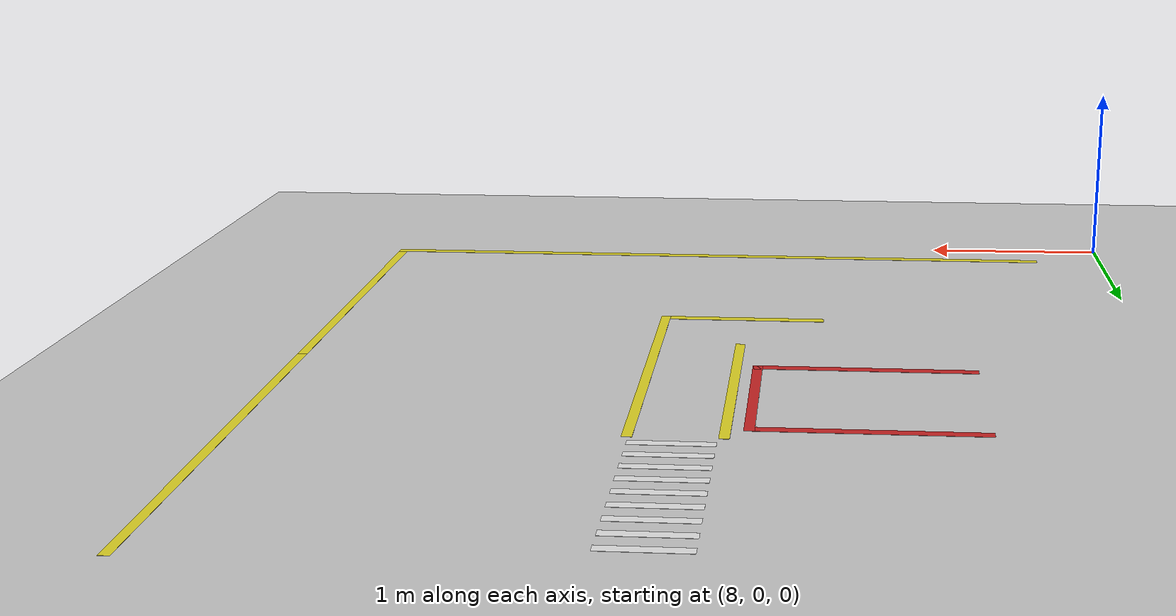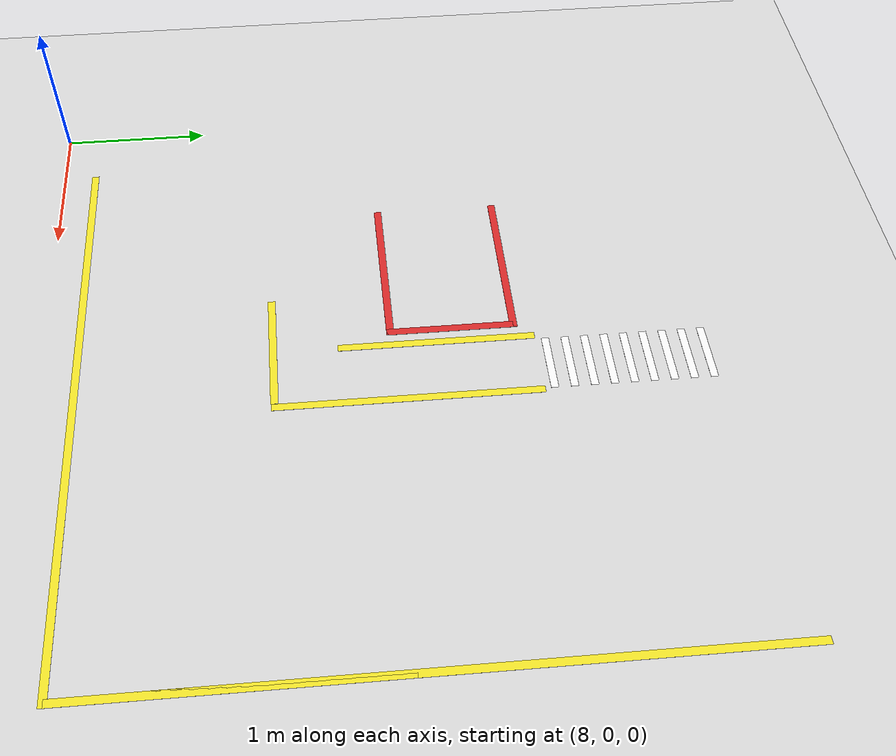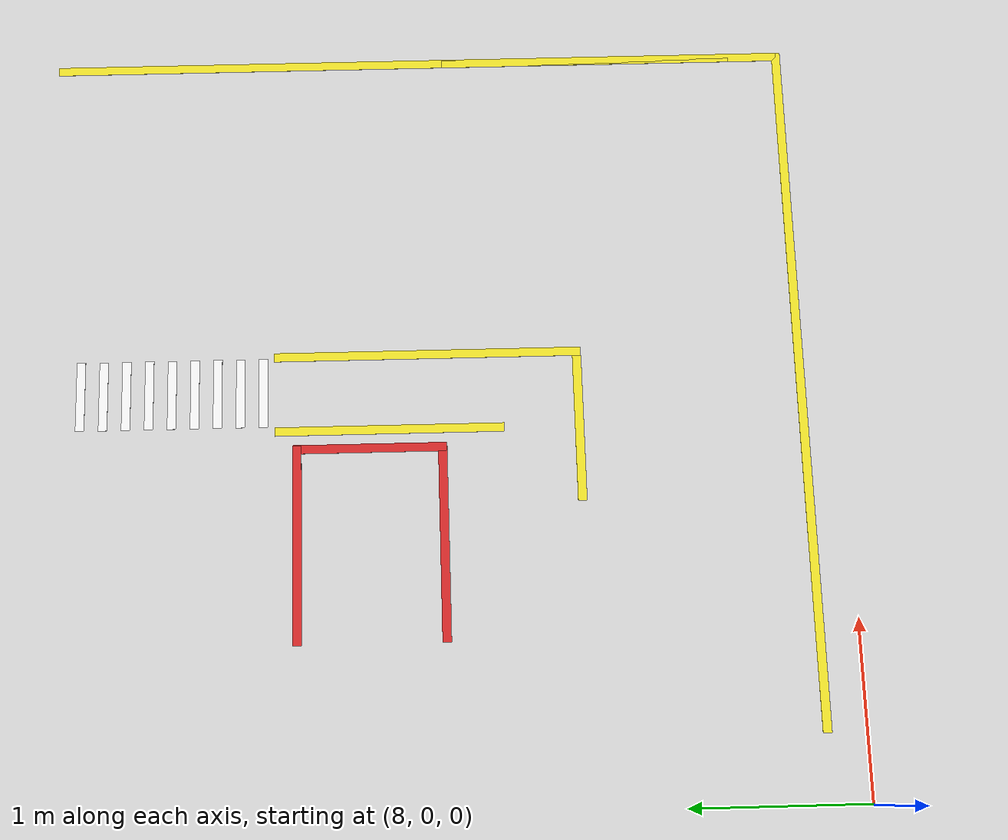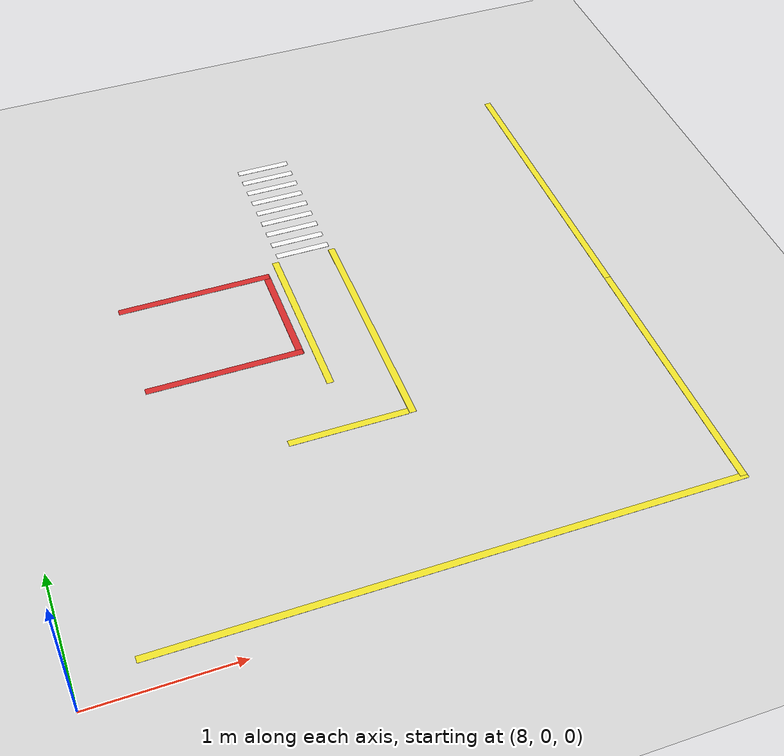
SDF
<sdf version="1.6">
 <world name="default">
  <model name="ground_plane">
   <static>1</static>
   <link name="link">
    <collision name="collision">
     <geometry><plane><normal>0 0 1</normal><size>100 100</size></plane></geometry>
     <surface><friction><ode><mu>100</mu><mu2>50</mu2></ode></friction></surface>
    </collision>
    <visual name="visual">
     <cast_shadows>0</cast_shadows>
     <geometry><plane><normal>0 0 1</normal><size>100 100</size></plane></geometry>
     <material>
      <script><uri>file://media/materials/scripts/gazebo.material</uri><name>Gazebo/Grey</name></script>
     </material>
    </visual>
   </link>
  </model>
  <model name="line2m_1">
   <link name="link_0">
    <inertial>
     <mass>1</mass>
     <inertia>
      <ixx>0.166667</ixx>
      <ixy>0</ixy>
      <ixz>0</ixz>
      <iyy>0.166667</iyy>
      <iyz>0</iyz>
      <izz>0.166667</izz>
     </inertia>
    </inertial>
    <visual name="visual">
     <geometry><box><size>2 0.05 0.001</size></box></geometry>
     <material>
      <lighting>1</lighting>
      <script><uri>file://media/materials/scripts/gazebo.material</uri><name>Gazebo/Yellow</name></script>
     </material>
    </visual>
    <collision name="collision">
     <geometry><box><size>2 0.05 1e-05</size></box></geometry>
     <surface>
      <friction>
       <ode><mu>1</mu><mu2>1</mu2><fdir1>0 0 0</fdir1><slip1>0</slip1><slip2>0</slip2></ode>
       <torsional>
        <coefficient>1</coefficient>
        <patch_radius>0</patch_radius>
        <surface_radius>0</surface_radius>
        <use_patch_radius>1</use_patch_radius>
        <ode><slip>0</slip></ode>
       </torsional>
      </friction>
      <bounce><restitution_coefficient>0</restitution_coefficient><threshold>1e+06</threshold></bounce>
      <contact>
       <collide_without_contact>0</collide_without_contact>
       <collide_without_contact_bitmask>1</collide_without_contact_bitmask>
       <collide_bitmask>1</collide_bitmask>
       <ode>
        <soft_cfm>0</soft_cfm>
        <soft_erp>0.2</soft_erp>
        <kp>1e+13</kp>
        <kd>1</kd>
        <max_vel>0.01</max_vel>
        <min_depth>0</min_depth>
       </ode>
       <bullet>
        <split_impulse>1</split_impulse>
        <split_impulse_penetration_threshold>-0.01</split_impulse_penetration_threshold>
        <soft_cfm>0</soft_cfm>
        <soft_erp>0.2</soft_erp>
        <kp>1e+13</kp>
        <kd>1</kd>
       </bullet>
      </contact>
     </surface>
    </collision>
   </link>
   <static>1</static>
   <pose>12.3567 1.22117 0 0 -0 1.5708</pose>
  </model>
  <model name="zebraCrossing9_1">
   <link name="link_0">
    <inertial>
     <mass>1</mass>
     <inertia>
      <ixx>0.166667</ixx>
      <ixy>0</ixy>
      <ixz>0</ixz>
      <iyy>0.166667</iyy>
      <iyz>0</iyz>
      <izz>0.166667</izz>
     </inertia>
    </inertial>
    <visual name="visual">
     <geometry><box><size>0.05 0.4 0.001</size></box></geometry>
     <material>
      <lighting>1</lighting>
      <script><uri>file://media/materials/scripts/gazebo.material</uri><name>Gazebo/White</name></script>
      <shader type="pixel"><normal_map>__default__</normal_map></shader>
      <ambient>1 1 1 1</ambient>
      <diffuse>1 1 1 1</diffuse>
      <specular>0.01 0.01 0.01 1</specular>
      <emissive>0 0 0 1</emissive>
     </material>
     <cast_shadows>0</cast_shadows>
    </visual>
    <visual name="ModelPreview_0::link_0::visual_1">
     <pose>0.13 0 0 0 -0 0</pose>
     <geometry><box><size>0.05 0.4 0.001</size></box></geometry>
     <material>
      <lighting>1</lighting>
      <script><uri>file://media/materials/scripts/gazebo.material</uri><name>Gazebo/White</name></script>
      <shader type="pixel"><normal_map>__default__</normal_map></shader>
      <ambient>1 1 1 1</ambient>
      <diffuse>1 1 1 1</diffuse>
      <specular>0.01 0.01 0.01 1</specular>
      <emissive>0 0 0 1</emissive>
     </material>
     <cast_shadows>0</cast_shadows>
    </visual>
    <visual name="ModelPreview_0::link_0::visual_2">
     <pose>0.26 0 0 0 -0 0</pose>
     <geometry><box><size>0.05 0.4 0.001</size></box></geometry>
     <material>
      <lighting>1</lighting>
      <script><uri>file://media/materials/scripts/gazebo.material</uri><name>Gazebo/White</name></script>
      <shader type="pixel"><normal_map>__default__</normal_map></shader>
      <ambient>1 1 1 1</ambient>
      <diffuse>1 1 1 1</diffuse>
      <specular>0.01 0.01 0.01 1</specular>
      <emissive>0 0 0 1</emissive>
     </material>
     <cast_shadows>0</cast_shadows>
    </visual>
    <visual name="ModelPreview_0::link_0::visual_3">
     <pose>0.39 0 0 0 -0 0</pose>
     <geometry><box><size>0.05 0.4 0.001</size></box></geometry>
     <material>
      <lighting>1</lighting>
      <script><uri>file://media/materials/scripts/gazebo.material</uri><name>Gazebo/White</name></script>
      <shader type="pixel"><normal_map>__default__</normal_map></shader>
      <ambient>1 1 1 1</ambient>
      <diffuse>1 1 1 1</diffuse>
      <specular>0.01 0.01 0.01 1</specular>
      <emissive>0 0 0 1</emissive>
     </material>
     <cast_shadows>0</cast_shadows>
    </visual>
    <visual name="ModelPreview_0::link_0::visual_4">
     <pose>0.52 0 0 0 -0 0</pose>
     <geometry><box><size>0.05 0.4 0.001</size></box></geometry>
     <material>
      <lighting>1</lighting>
      <script><uri>file://media/materials/scripts/gazebo.material</uri><name>Gazebo/White</name></script>
      <shader type="pixel"><normal_map>__default__</normal_map></shader>
      <ambient>1 1 1 1</ambient>
      <diffuse>1 1 1 1</diffuse>
      <specular>0.01 0.01 0.01 1</specular>
      <emissive>0 0 0 1</emissive>
     </material>
     <cast_shadows>0</cast_shadows>
    </visual>
    <visual name="ModelPreview_0::link_0::visual_5">
     <pose>-0.13 0 0 0 -0 0</pose>
     <geometry><box><size>0.05 0.4 0.001</size></box></geometry>
     <material>
      <lighting>1</lighting>
      <script><uri>file://media/materials/scripts/gazebo.material</uri><name>Gazebo/White</name></script>
      <shader type="pixel"><normal_map>__default__</normal_map></shader>
      <ambient>1 1 1 1</ambient>
      <diffuse>1 1 1 1</diffuse>
      <specular>0.01 0.01 0.01 1</specular>
      <emissive>0 0 0 1</emissive>
     </material>
     <cast_shadows>0</cast_shadows>
    </visual>
    <visual name="ModelPreview_0::link_0::visual_6">
     <pose>-0.26 0 0 0 -0 0</pose>
     <geometry><box><size>0.05 0.4 0.001</size></box></geometry>
     <material>
      <lighting>1</lighting>
      <script><uri>file://media/materials/scripts/gazebo.material</uri><name>Gazebo/White</name></script>
      <shader type="pixel"><normal_map>__default__</normal_map></shader>
      <ambient>1 1 1 1</ambient>
      <diffuse>1 1 1 1</diffuse>
      <specular>0.01 0.01 0.01 1</specular>
      <emissive>0 0 0 1</emissive>
     </material>
     <cast_shadows>0</cast_shadows>
    </visual>
    <visual name="ModelPreview_0::link_0::visual_7">
     <pose>-0.39 0 0 0 -0 0</pose>
     <geometry><box><size>0.05 0.4 0.001</size></box></geometry>
     <material>
      <lighting>1</lighting>
      <script><uri>file://media/materials/scripts/gazebo.material</uri><name>Gazebo/White</name></script>
      <shader type="pixel"><normal_map>__default__</normal_map></shader>
      <ambient>1 1 1 1</ambient>
      <diffuse>1 1 1 1</diffuse>
      <specular>0.01 0.01 0.01 1</specular>
      <emissive>0 0 0 1</emissive>
     </material>
     <cast_shadows>0</cast_shadows>
    </visual>
    <visual name="ModelPreview_0::link_0::visual_8">
     <pose>-0.52 0 0 0 -0 0</pose>
     <geometry><box><size>0.05 0.4 0.001</size></box></geometry>
     <material>
      <lighting>1</lighting>
      <script><uri>file://media/materials/scripts/gazebo.material</uri><name>Gazebo/White</name></script>
      <shader type="pixel"><normal_map>__default__</normal_map></shader>
      <ambient>1 1 1 1</ambient>
      <diffuse>1 1 1 1</diffuse>
      <specular>0.01 0.01 0.01 1</specular>
      <emissive>0 0 0 1</emissive>
     </material>
     <cast_shadows>0</cast_shadows>
    </visual>
   </link>
   <static>1</static>
   <pose>10.35 3.8 0 0 -0 1.5708</pose>
  </model>
  <model name="line175cm">
   <link name="link_1">
    <inertial>
     <mass>1</mass>
     <inertia>
      <ixx>0.166667</ixx>
      <ixy>0</ixy>
      <ixz>0</ixz>
      <iyy>0.166667</iyy>
      <iyz>0</iyz>
      <izz>0.166667</izz>
     </inertia>
    </inertial>
    <visual name="visual">
     <geometry><box><size>1.75 0.05 0.001</size></box></geometry>
     <material>
      <script><uri>file://media/materials/scripts/gazebo.material</uri><name>Gazebo/Yellow</name></script>
     </material>
    </visual>
    <collision name="collision">
     <geometry><box><size>1.75 0.05 1e-05</size></box></geometry>
     <surface>
      <friction>
       <ode><mu>1</mu><mu2>1</mu2><fdir1>0 0 0</fdir1><slip1>0</slip1><slip2>0</slip2></ode>
       <torsional>
        <coefficient>1</coefficient>
        <patch_radius>0</patch_radius>
        <surface_radius>0</surface_radius>
        <use_patch_radius>1</use_patch_radius>
        <ode><slip>0</slip></ode>
       </torsional>
      </friction>
      <bounce><restitution_coefficient>0</restitution_coefficient><threshold>1e+06</threshold></bounce>
      <contact>
       <collide_without_contact>0</collide_without_contact>
       <collide_without_contact_bitmask>1</collide_without_contact_bitmask>
       <collide_bitmask>1</collide_bitmask>
       <ode>
        <soft_cfm>0</soft_cfm>
        <soft_erp>0.2</soft_erp>
        <kp>1e+13</kp>
        <kd>1</kd>
        <max_vel>0.01</max_vel>
        <min_depth>0</min_depth>
       </ode>
       <bullet>
        <split_impulse>1</split_impulse>
        <split_impulse_penetration_threshold>-0.01</split_impulse_penetration_threshold>
        <soft_cfm>0</soft_cfm>
        <soft_erp>0.2</soft_erp>
        <kp>1e+13</kp>
        <kd>1</kd>
       </bullet>
      </contact>
     </surface>
    </collision>
   </link>
   <static>1</static>
   <pose>10.5567 2.34334 0 0 -0 1.5708</pose>
  </model>
  <model name="line130cm_clone">
   <link name="link_1">
    <inertial>
     <mass>1</mass>
     <inertia>
      <ixx>0.166667</ixx>
      <ixy>0</ixy>
      <ixz>0</ixz>
      <iyy>0.166667</iyy>
      <iyz>0</iyz>
      <izz>0.166667</izz>
     </inertia>
    </inertial>
    <visual name="visual">
     <geometry><box><size>1.3 0.05 0.001</size></box></geometry>
     <material>
      <script><uri>file://media/materials/scripts/gazebo.material</uri><name>Gazebo/Yellow</name></script>
     </material>
    </visual>
    <collision name="collision">
     <geometry><box><size>1.3 0.05 1e-05</size></box></geometry>
     <surface>
      <friction>
       <ode><mu>1</mu><mu2>1</mu2><fdir1>0 0 0</fdir1><slip1>0</slip1><slip2>0</slip2></ode>
       <torsional>
        <coefficient>1</coefficient>
        <patch_radius>0</patch_radius>
        <surface_radius>0</surface_radius>
        <use_patch_radius>1</use_patch_radius>
        <ode><slip>0</slip></ode>
       </torsional>
      </friction>
      <bounce><restitution_coefficient>0</restitution_coefficient><threshold>1e+06</threshold></bounce>
      <contact>
       <collide_without_contact>0</collide_without_contact>
       <collide_without_contact_bitmask>1</collide_without_contact_bitmask>
       <collide_bitmask>1</collide_bitmask>
       <ode>
        <soft_cfm>0</soft_cfm>
        <soft_erp>0.2</soft_erp>
        <kp>1e+13</kp>
        <kd>1</kd>
        <max_vel>0.01</max_vel>
        <min_depth>0</min_depth>
       </ode>
       <bullet>
        <split_impulse>1</split_impulse>
        <split_impulse_penetration_threshold>-0.01</split_impulse_penetration_threshold>
        <soft_cfm>0</soft_cfm>
        <soft_erp>0.2</soft_erp>
        <kp>1e+13</kp>
        <kd>1</kd>
       </bullet>
      </contact>
     </surface>
    </collision>
   </link>
   <static>1</static>
   <pose>10.1217 2.565 0 0 -0 1.5708</pose>
  </model>
  <model name="line87cm_0">
   <link name="link_1">
    <inertial>
     <mass>1</mass>
     <inertia>
      <ixx>0.166667</ixx>
      <ixy>0</ixy>
      <ixz>0</ixz>
      <iyy>0.166667</iyy>
      <iyz>0</iyz>
      <izz>0.166667</izz>
     </inertia>
    </inertial>
    <visual name="visual">
     <geometry><box><size>0.87 0.05 0.001</size></box></geometry>
     <material>
      <script><uri>file://media/materials/scripts/gazebo.material</uri><name>Gazebo/Red</name></script>
     </material>
    </visual>
    <collision name="collision">
     <geometry><box><size>0.87 0.05 1e-05</size></box></geometry>
     <surface>
      <friction>
       <ode><mu>1</mu><mu2>1</mu2><fdir1>0 0 0</fdir1><slip1>0</slip1><slip2>0</slip2></ode>
       <torsional>
        <coefficient>1</coefficient>
        <patch_radius>0</patch_radius>
        <surface_radius>0</surface_radius>
        <use_patch_radius>1</use_patch_radius>
        <ode><slip>0</slip></ode>
       </torsional>
      </friction>
      <bounce><restitution_coefficient>0</restitution_coefficient><threshold>1e+06</threshold></bounce>
      <contact>
       <collide_without_contact>0</collide_without_contact>
       <collide_without_contact_bitmask>1</collide_without_contact_bitmask>
       <collide_bitmask>1</collide_bitmask>
       <ode>
        <soft_cfm>0</soft_cfm>
        <soft_erp>0.2</soft_erp>
        <kp>1e+13</kp>
        <kd>1</kd>
        <max_vel>0.01</max_vel>
        <min_depth>0</min_depth>
       </ode>
       <bullet>
        <split_impulse>1</split_impulse>
        <split_impulse_penetration_threshold>-0.01</split_impulse_penetration_threshold>
        <soft_cfm>0</soft_cfm>
        <soft_erp>0.2</soft_erp>
        <kp>1e+13</kp>
        <kd>1</kd>
       </bullet>
      </contact>
     </surface>
    </collision>
   </link>
   <static>1</static>
   <pose>10.0159 2.68001 0 0 -0 1.5708</pose>
  </model>
  <model name="line112cm">
   <link name="link_1">
    <inertial>
     <mass>1</mass>
     <inertia>
      <ixx>0.166667</ixx>
      <ixy>0</ixy>
      <ixz>0</ixz>
      <iyy>0.166667</iyy>
      <iyz>0</iyz>
      <izz>0.166667</izz>
     </inertia>
    </inertial>
    <visual name="visual">
     <geometry><box><size>1.12 0.05 0.001</size></box></geometry>
     <material>
      <script><uri>file://media/materials/scripts/gazebo.material</uri><name>Gazebo/Red</name></script>
     </material>
    </visual>
    <collision name="collision">
     <geometry><box><size>1.12 0.05 1e-05</size></box></geometry>
     <surface>
      <friction>
       <ode><mu>1</mu><mu2>1</mu2><fdir1>0 0 0</fdir1><slip1>0</slip1><slip2>0</slip2></ode>
       <torsional>
        <coefficient>1</coefficient>
        <patch_radius>0</patch_radius>
        <surface_radius>0</surface_radius>
        <use_patch_radius>1</use_patch_radius>
        <ode><slip>0</slip></ode>
       </torsional>
      </friction>
      <bounce><restitution_coefficient>0</restitution_coefficient><threshold>1e+06</threshold></bounce>
      <contact>
       <collide_without_contact>0</collide_without_contact>
       <collide_without_contact_bitmask>1</collide_without_contact_bitmask>
       <collide_bitmask>1</collide_bitmask>
       <ode>
        <soft_cfm>0</soft_cfm>
        <soft_erp>0.2</soft_erp>
        <kp>1e+13</kp>
        <kd>1</kd>
        <max_vel>0.01</max_vel>
        <min_depth>0</min_depth>
       </ode>
       <bullet>
        <split_impulse>1</split_impulse>
        <split_impulse_penetration_threshold>-0.01</split_impulse_penetration_threshold>
        <soft_cfm>0</soft_cfm>
        <soft_erp>0.2</soft_erp>
        <kp>1e+13</kp>
        <kd>1</kd>
       </bullet>
      </contact>
     </surface>
    </collision>
   </link>
   <static>1</static>
   <pose>9.47674 3.09 0 0 -0 0</pose>
  </model>
  <model name="line112cm_0">
   <link name="link_1">
    <inertial>
     <mass>1</mass>
     <inertia>
      <ixx>0.166667</ixx>
      <ixy>0</ixy>
      <ixz>0</ixz>
      <iyy>0.166667</iyy>
      <iyz>0</iyz>
      <izz>0.166667</izz>
     </inertia>
    </inertial>
    <visual name="visual">
     <geometry><box><size>1.12 0.05 0.001</size></box></geometry>
     <material>
      <script><uri>file://media/materials/scripts/gazebo.material</uri><name>Gazebo/Red</name></script>
     </material>
    </visual>
    <collision name="collision">
     <geometry><box><size>1.12 0.05 1e-05</size></box></geometry>
     <surface>
      <friction>
       <ode><mu>1</mu><mu2>1</mu2><fdir1>0 0 0</fdir1><slip1>0</slip1><slip2>0</slip2></ode>
       <torsional>
        <coefficient>1</coefficient>
        <patch_radius>0</patch_radius>
        <surface_radius>0</surface_radius>
        <use_patch_radius>1</use_patch_radius>
        <ode><slip>0</slip></ode>
       </torsional>
      </friction>
      <bounce><restitution_coefficient>0</restitution_coefficient><threshold>1e+06</threshold></bounce>
      <contact>
       <collide_without_contact>0</collide_without_contact>
       <collide_without_contact_bitmask>1</collide_without_contact_bitmask>
       <collide_bitmask>1</collide_bitmask>
       <ode>
        <soft_cfm>0</soft_cfm>
        <soft_erp>0.2</soft_erp>
        <kp>1e+13</kp>
        <kd>1</kd>
        <max_vel>0.01</max_vel>
        <min_depth>0</min_depth>
       </ode>
       <bullet>
        <split_impulse>1</split_impulse>
        <split_impulse_penetration_threshold>-0.01</split_impulse_penetration_threshold>
        <soft_cfm>0</soft_cfm>
        <soft_erp>0.2</soft_erp>
        <kp>1e+13</kp>
        <kd>1</kd>
       </bullet>
      </contact>
     </surface>
    </collision>
   </link>
   <static>1</static>
   <pose>9.47674 2.26719 0 0 -0 0</pose>
  </model>
  <model name="line4m_0">
   <link name="link_3">
    <inertial>
     <mass>1</mass>
     <inertia>
      <ixx>0.166667</ixx>
      <ixy>0</ixy>
      <ixz>0</ixz>
      <iyy>0.166667</iyy>
      <iyz>0</iyz>
      <izz>0.166667</izz>
     </inertia>
    </inertial>
    <visual name="visual">
     <geometry><box><size>0.05 4 0.001</size></box></geometry>
     <material>
      <lighting>1</lighting>
      <script><uri>file://media/materials/scripts/gazebo.material</uri><name>Gazebo/Yellow</name></script>
     </material>
    </visual>
   </link>
   <static>1</static>
   <pose>12.3567 2.50635 0 0 -0 0</pose>
  </model>
  <model name="line4m_1">
   <link name="link_3">
    <inertial>
     <mass>1</mass>
     <inertia>
      <ixx>0.166667</ixx>
      <ixy>0</ixy>
      <ixz>0</ixz>
      <iyy>0.166667</iyy>
      <iyz>0</iyz>
      <izz>0.166667</izz>
     </inertia>
    </inertial>
    <visual name="visual">
     <geometry><box><size>0.05 4 0.001</size></box></geometry>
     <material>
      <lighting>1</lighting>
      <script><uri>file://media/materials/scripts/gazebo.material</uri><name>Gazebo/Yellow</name></script>
     </material>
    </visual>
   </link>
   <static>1</static>
   <pose>10.3817 0.22 0 0 -0 1.5708</pose>
  </model>
  <model name="line_84_0">
   <link name="link_8">
    <inertial>
     <mass>1</mass>
     <inertia>
      <ixx>0.166667</ixx>
      <ixy>0</ixy>
      <ixz>0</ixz>
      <iyy>0.166667</iyy>
      <iyz>0</iyz>
      <izz>0.166667</izz>
     </inertia>
    </inertial>
    <visual name="visual">
     <geometry><box><size>0.05 0.84 0.001</size></box></geometry>
     <material>
      <lighting>1</lighting>
      <script><uri>file://media/materials/scripts/gazebo.material</uri><name>Gazebo/Yellow</name></script>
     </material>
    </visual>
    <collision name="collision">
     <geometry><box><size>0.05 0.84 0.001</size></box></geometry>
     <surface>
      <friction>
       <ode><mu>1</mu><mu2>1</mu2><fdir1>0 0 0</fdir1><slip1>0</slip1><slip2>0</slip2></ode>
       <torsional>
        <coefficient>1</coefficient>
        <patch_radius>0</patch_radius>
        <surface_radius>0</surface_radius>
        <use_patch_radius>1</use_patch_radius>
        <ode><slip>0</slip></ode>
       </torsional>
      </friction>
      <bounce><restitution_coefficient>0</restitution_coefficient><threshold>1e+06</threshold></bounce>
      <contact>
       <collide_without_contact>0</collide_without_contact>
       <collide_without_contact_bitmask>1</collide_without_contact_bitmask>
       <collide_bitmask>1</collide_bitmask>
       <ode>
        <soft_cfm>0</soft_cfm>
        <soft_erp>0.2</soft_erp>
        <kp>1e+13</kp>
        <kd>1</kd>
        <max_vel>0.01</max_vel>
        <min_depth>0</min_depth>
       </ode>
       <bullet>
        <split_impulse>1</split_impulse>
        <split_impulse_penetration_threshold>-0.01</split_impulse_penetration_threshold>
        <soft_cfm>0</soft_cfm>
        <soft_erp>0.2</soft_erp>
        <kp>1e+13</kp>
        <kd>1</kd>
       </bullet>
      </contact>
     </surface>
    </collision>
   </link>
   <static>1</static>
   <pose>10.11 1.49 0 0 -0 1.5708</pose>
  </model>
 </world>
</sdf>
